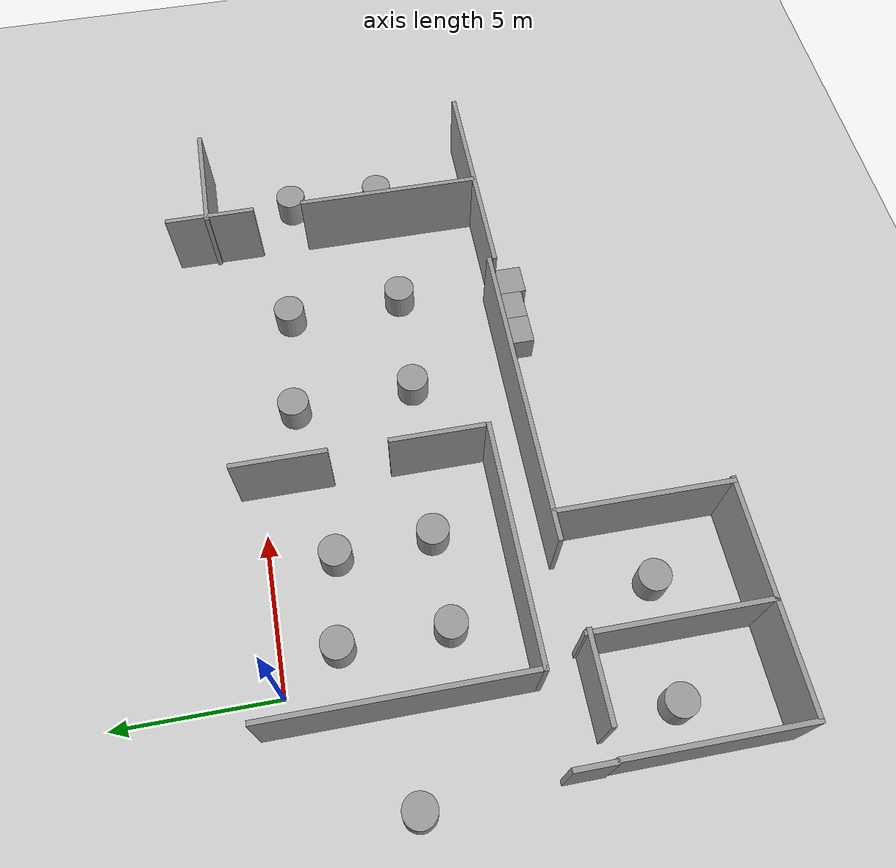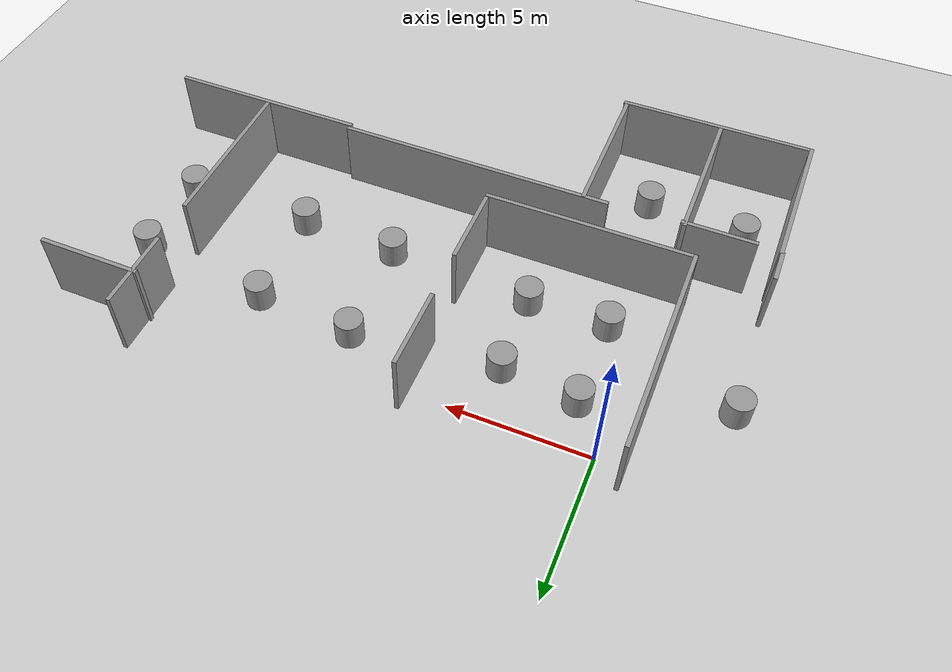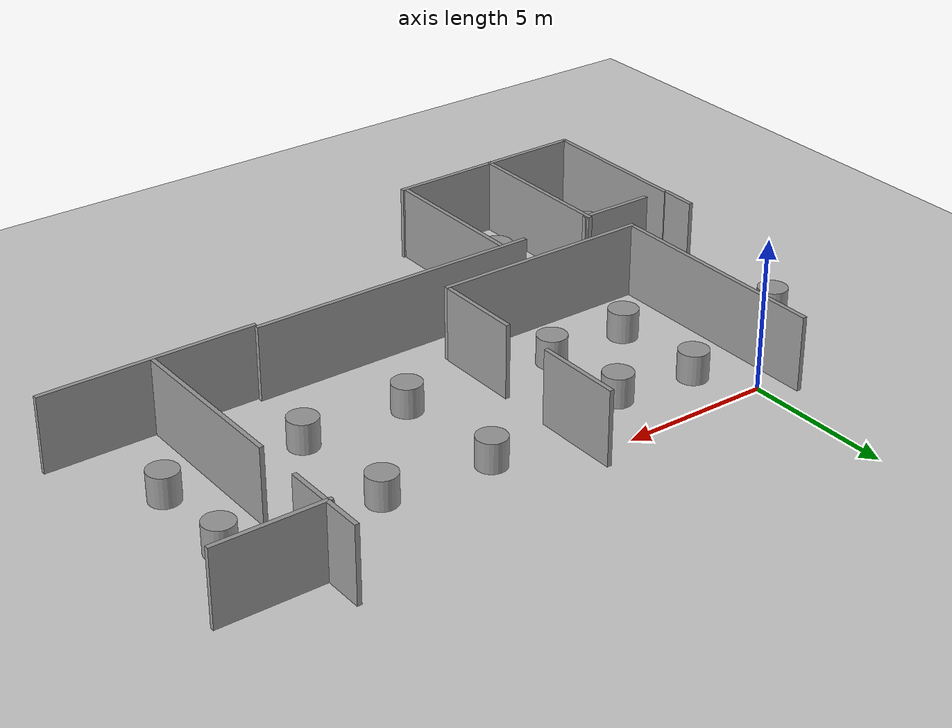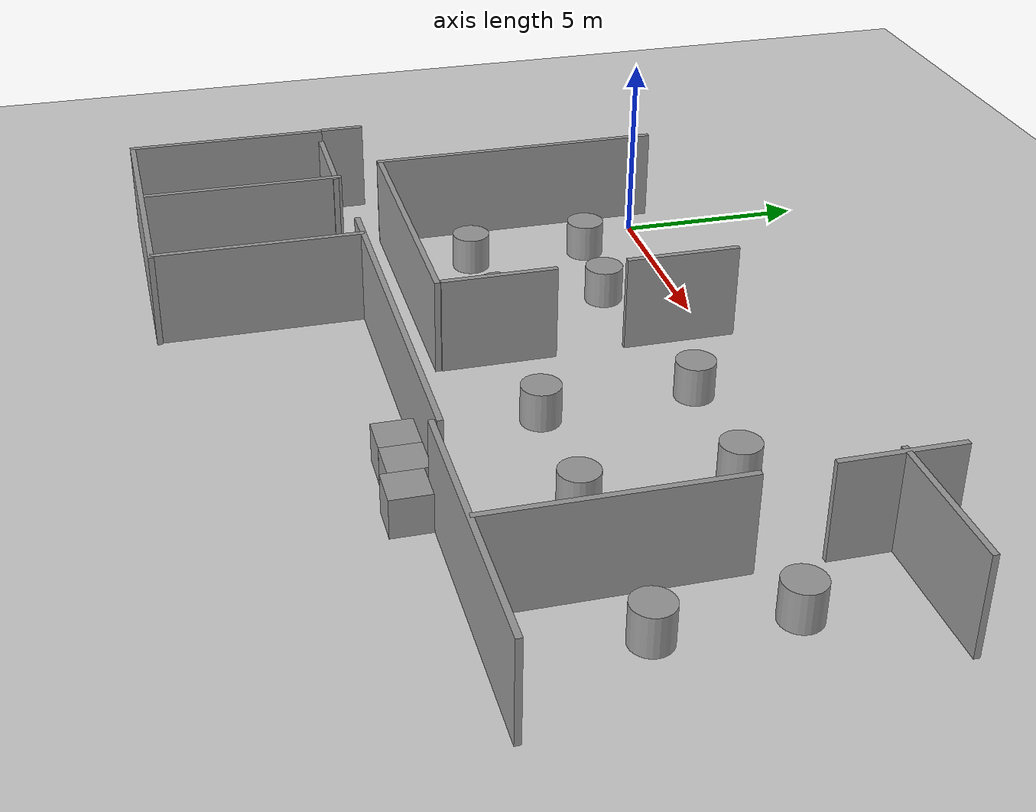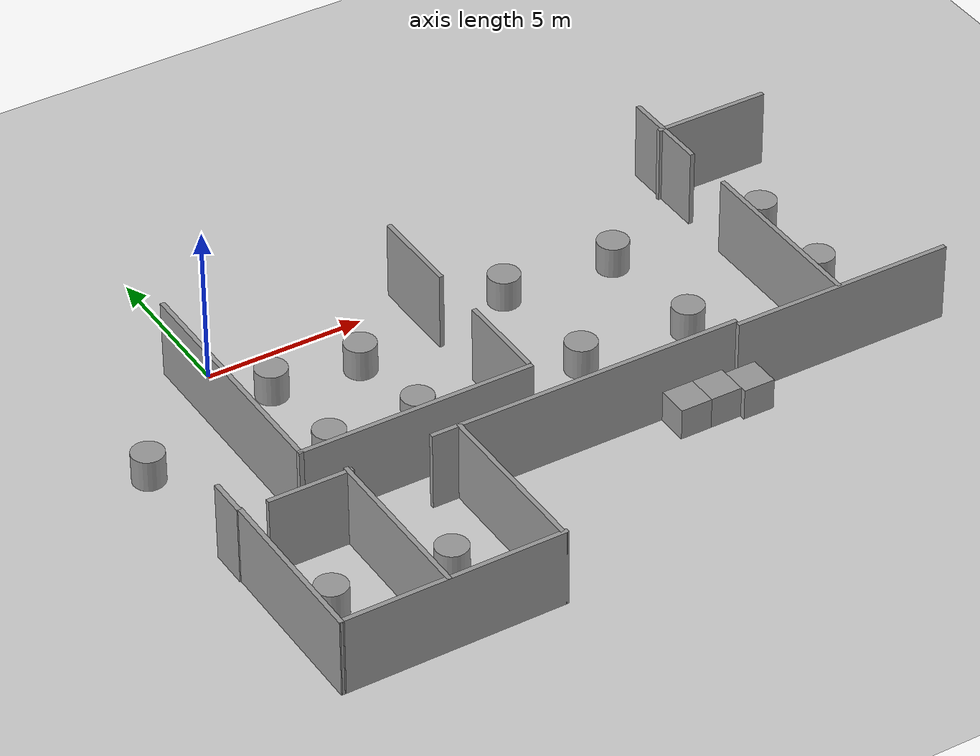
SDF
<sdf version="1.7">
 <world name="default">
  <model name="ground_plane">
   <static>1</static>
   <link name="link">
    <collision name="collision">
     <geometry><plane><normal>0 0 1</normal><size>100 100</size></plane></geometry>
     <surface>
      <contact><collide_bitmask>65535</collide_bitmask></contact>
      <friction><ode><mu>100</mu><mu2>50</mu2></ode></friction>
     </surface>
    </collision>
    <visual name="visual">
     <cast_shadows>0</cast_shadows>
     <geometry><plane><normal>0 0 1</normal><size>100 100</size></plane></geometry>
     <material>
      <script><uri>file://media/materials/scripts/gazebo.material</uri><name>Gazebo/Grey</name></script>
     </material>
    </visual>
   </link>
  </model>
  <model name="5th_v2">
   <link name="Wall_102">
    <pose>15.9331 -8.58282 0 0 -0 3.14159</pose>
    <inertial>
     <inertia><ixx>0</ixx><ixy>0</ixy><ixz>0</ixz><iyy>0</iyy><iyz>0</iyz><izz>0</izz></inertia>
     <mass>0</mass>
    </inertial>
    <visual name="Wall_102_Visual">
     <pose>0 0 1.25 0 -0 0</pose>
     <geometry><box><size>7.15162 0.15 2.5</size></box></geometry>
     <material>
      <script><uri>file://media/materials/scripts/gazebo.material</uri><name>Gazebo/Grey</name></script>
      <ambient>1 1 1 1</ambient>
     </material>
     <meta><layer>0</layer></meta>
    </visual>
    <collision name="Wall_102_Collision">
     <pose>0 0 1.25 0 -0 0</pose>
     <geometry><box><size>7.15162 0.15 2.5</size></box></geometry>
     <surface>
      <friction>
       <ode><mu>1</mu><mu2>1</mu2><fdir1>0 0 0</fdir1><slip1>0</slip1><slip2>0</slip2></ode>
       <torsional>
        <coefficient>1</coefficient>
        <patch_radius>0</patch_radius>
        <surface_radius>0</surface_radius>
        <use_patch_radius>1</use_patch_radius>
        <ode><slip>0</slip></ode>
       </torsional>
      </friction>
      <bounce><restitution_coefficient>0</restitution_coefficient><threshold>1e+06</threshold></bounce>
      <contact>
       <collide_without_contact>0</collide_without_contact>
       <collide_without_contact_bitmask>1</collide_without_contact_bitmask>
       <collide_bitmask>1</collide_bitmask>
       <ode>
        <soft_cfm>0</soft_cfm>
        <soft_erp>0.2</soft_erp>
        <kp>1e+13</kp>
        <kd>1</kd>
        <max_vel>0.01</max_vel>
        <min_depth>0</min_depth>
       </ode>
       <bullet>
        <split_impulse>1</split_impulse>
        <split_impulse_penetration_threshold>-0.01</split_impulse_penetration_threshold>
        <soft_cfm>0</soft_cfm>
        <soft_erp>0.2</soft_erp>
        <kp>1e+13</kp>
        <kd>1</kd>
       </bullet>
      </contact>
     </surface>
    </collision>
   </link>
   <link name="Wall_105">
    <pose>-3.56301 -7.81645 0 0 0 -1.5708</pose>
    <visual name="Wall_105_Visual">
     <pose>0 0 1.25 0 -0 0</pose>
     <geometry><box><size>1.25 0.15 2.5</size></box></geometry>
     <material>
      <script><uri>file://media/materials/scripts/gazebo.material</uri><name>Gazebo/Grey</name></script>
      <ambient>1 1 1 1</ambient>
     </material>
     <meta><layer>0</layer></meta>
    </visual>
    <collision name="Wall_105_Collision">
     <pose>0 0 1.25 0 -0 0</pose>
     <geometry><box><size>1.25 0.15 2.5</size></box></geometry>
     <surface>
      <friction>
       <ode><mu>1</mu><mu2>1</mu2><fdir1>0 0 0</fdir1><slip1>0</slip1><slip2>0</slip2></ode>
       <torsional>
        <coefficient>1</coefficient>
        <patch_radius>0</patch_radius>
        <surface_radius>0</surface_radius>
        <use_patch_radius>1</use_patch_radius>
        <ode><slip>0</slip></ode>
       </torsional>
      </friction>
      <bounce><restitution_coefficient>0</restitution_coefficient><threshold>1e+06</threshold></bounce>
      <contact>
       <collide_without_contact>0</collide_without_contact>
       <collide_without_contact_bitmask>1</collide_without_contact_bitmask>
       <collide_bitmask>1</collide_bitmask>
       <ode>
        <soft_cfm>0</soft_cfm>
        <soft_erp>0.2</soft_erp>
        <kp>1e+13</kp>
        <kd>1</kd>
        <max_vel>0.01</max_vel>
        <min_depth>0</min_depth>
       </ode>
       <bullet>
        <split_impulse>1</split_impulse>
        <split_impulse_penetration_threshold>-0.01</split_impulse_penetration_threshold>
        <soft_cfm>0</soft_cfm>
        <soft_erp>0.2</soft_erp>
        <kp>1e+13</kp>
        <kd>1</kd>
       </bullet>
      </contact>
     </surface>
    </collision>
   </link>
   <link name="Wall_108_clone">
    <pose>15.8279 0.515353 0 0 -0 1.5708</pose>
    <inertial>
     <inertia><ixx>0</ixx><ixy>0</ixy><ixz>0</ixz><iyy>0</iyy><iyz>0</iyz><izz>0</izz></inertia>
     <mass>0</mass>
    </inertial>
    <visual name="Wall_108_Visual">
     <pose>0 0 1.25 0 -0 0</pose>
     <geometry><box><size>2.96394 0.15 2.5</size></box></geometry>
     <material>
      <script><uri>file://media/materials/scripts/gazebo.material</uri><name>Gazebo/Grey</name></script>
      <ambient>1 1 1 1</ambient>
      <shader type="pixel"/>
     </material>
     <meta><layer>0</layer></meta>
    </visual>
    <collision name="Wall_108_Collision">
     <pose>0 0 1.25 0 -0 0</pose>
     <geometry><box><size>2.96394 0.15 2.5</size></box></geometry>
     <surface>
      <friction>
       <ode><mu>1</mu><mu2>1</mu2><fdir1>0 0 0</fdir1><slip1>0</slip1><slip2>0</slip2></ode>
       <torsional>
        <coefficient>1</coefficient>
        <patch_radius>0</patch_radius>
        <surface_radius>0</surface_radius>
        <use_patch_radius>1</use_patch_radius>
        <ode><slip>0</slip></ode>
       </torsional>
      </friction>
      <bounce><restitution_coefficient>0</restitution_coefficient><threshold>1e+06</threshold></bounce>
      <contact>
       <collide_without_contact>0</collide_without_contact>
       <collide_without_contact_bitmask>1</collide_without_contact_bitmask>
       <collide_bitmask>1</collide_bitmask>
       <ode>
        <soft_cfm>0</soft_cfm>
        <soft_erp>0.2</soft_erp>
        <kp>1e+13</kp>
        <kd>1</kd>
        <max_vel>0.01</max_vel>
        <min_depth>0</min_depth>
       </ode>
       <bullet>
        <split_impulse>1</split_impulse>
        <split_impulse_penetration_threshold>-0.01</split_impulse_penetration_threshold>
        <soft_cfm>0</soft_cfm>
        <soft_erp>0.2</soft_erp>
        <kp>1e+13</kp>
        <kd>1</kd>
       </bullet>
      </contact>
     </surface>
    </collision>
   </link>
   <link name="Wall_108_clone_0">
    <pose>15.8288 -5.57913 0 0 -0 1.5708</pose>
    <inertial>
     <inertia><ixx>0</ixx><ixy>0</ixy><ixz>0</ixz><iyy>0</iyy><iyz>0</iyz><izz>0</izz></inertia>
     <mass>0</mass>
    </inertial>
    <visual name="Wall_108_Visual">
     <pose>0 0 1.25 0 -0 0</pose>
     <geometry><box><size>6.01082 0.15 2.5</size></box></geometry>
     <material>
      <script><uri>file://media/materials/scripts/gazebo.material</uri><name>Gazebo/Grey</name></script>
      <ambient>1 1 1 1</ambient>
      <shader type="pixel"/>
     </material>
     <meta><layer>0</layer></meta>
    </visual>
    <collision name="Wall_108_Collision">
     <pose>0 0 1.25 0 -0 0</pose>
     <geometry><box><size>6.01082 0.15 2.5</size></box></geometry>
     <surface>
      <friction>
       <ode><mu>1</mu><mu2>1</mu2><fdir1>0 0 0</fdir1><slip1>0</slip1><slip2>0</slip2></ode>
       <torsional>
        <coefficient>1</coefficient>
        <patch_radius>0</patch_radius>
        <surface_radius>0</surface_radius>
        <use_patch_radius>1</use_patch_radius>
        <ode><slip>0</slip></ode>
       </torsional>
      </friction>
      <bounce><restitution_coefficient>0</restitution_coefficient><threshold>1e+06</threshold></bounce>
      <contact>
       <collide_without_contact>0</collide_without_contact>
       <collide_without_contact_bitmask>1</collide_without_contact_bitmask>
       <collide_bitmask>1</collide_bitmask>
       <ode>
        <soft_cfm>0</soft_cfm>
        <soft_erp>0.2</soft_erp>
        <kp>1e+13</kp>
        <kd>1</kd>
        <max_vel>0.01</max_vel>
        <min_depth>0</min_depth>
       </ode>
       <bullet>
        <split_impulse>1</split_impulse>
        <split_impulse_penetration_threshold>-0.01</split_impulse_penetration_threshold>
        <soft_cfm>0</soft_cfm>
        <soft_erp>0.2</soft_erp>
        <kp>1e+13</kp>
        <kd>1</kd>
       </bullet>
      </contact>
     </surface>
    </collision>
   </link>
   <link name="Wall_108_clone_clone">
    <pose>6.41093 -0.803869 0 0 -0 1.5708</pose>
    <inertial>
     <inertia><ixx>0</ixx><ixy>0</ixy><ixz>0</ixz><iyy>0</iyy><iyz>0</iyz><izz>0</izz></inertia>
     <mass>0</mass>
    </inertial>
    <visual name="Wall_108_Visual">
     <pose>0 0 1.25 0 -0 0</pose>
     <geometry><box><size>2.96394 0.15 2.5</size></box></geometry>
     <material>
      <script><uri>file://media/materials/scripts/gazebo.material</uri><name>Gazebo/Grey</name></script>
      <ambient>1 1 1 1</ambient>
      <shader type="pixel"/>
     </material>
     <meta><layer>0</layer></meta>
    </visual>
    <collision name="Wall_108_Collision">
     <pose>0 0 1.25 0 -0 0</pose>
     <geometry><box><size>2.96394 0.15 2.5</size></box></geometry>
     <surface>
      <friction>
       <ode><mu>1</mu><mu2>1</mu2><fdir1>0 0 0</fdir1><slip1>0</slip1><slip2>0</slip2></ode>
       <torsional>
        <coefficient>1</coefficient>
        <patch_radius>0</patch_radius>
        <surface_radius>0</surface_radius>
        <use_patch_radius>1</use_patch_radius>
        <ode><slip>0</slip></ode>
       </torsional>
      </friction>
      <bounce><restitution_coefficient>0</restitution_coefficient><threshold>1e+06</threshold></bounce>
      <contact>
       <collide_without_contact>0</collide_without_contact>
       <collide_without_contact_bitmask>1</collide_without_contact_bitmask>
       <collide_bitmask>1</collide_bitmask>
       <ode>
        <soft_cfm>0</soft_cfm>
        <soft_erp>0.2</soft_erp>
        <kp>1e+13</kp>
        <kd>1</kd>
        <max_vel>0.01</max_vel>
        <min_depth>0</min_depth>
       </ode>
       <bullet>
        <split_impulse>1</split_impulse>
        <split_impulse_penetration_threshold>-0.01</split_impulse_penetration_threshold>
        <soft_cfm>0</soft_cfm>
        <soft_erp>0.2</soft_erp>
        <kp>1e+13</kp>
        <kd>1</kd>
       </bullet>
      </contact>
     </surface>
    </collision>
   </link>
   <link name="Wall_108_clone_clone_0">
    <pose>6.41093 -5.56687 0 0 -0 1.5708</pose>
    <inertial>
     <inertia><ixx>0</ixx><ixy>0</ixy><ixz>0</ixz><iyy>0</iyy><iyz>0</iyz><izz>0</izz></inertia>
     <mass>0</mass>
    </inertial>
    <visual name="Wall_108_Visual">
     <pose>0 0 1.25 0 -0 0</pose>
     <geometry><box><size>2.96394 0.15 2.5</size></box></geometry>
     <material>
      <script><uri>file://media/materials/scripts/gazebo.material</uri><name>Gazebo/Grey</name></script>
      <ambient>1 1 1 1</ambient>
      <shader type="pixel"/>
     </material>
     <meta><layer>0</layer></meta>
    </visual>
    <collision name="Wall_108_Collision">
     <pose>0 0 1.25 0 -0 0</pose>
     <geometry><box><size>2.96394 0.15 2.5</size></box></geometry>
     <surface>
      <friction>
       <ode><mu>1</mu><mu2>1</mu2><fdir1>0 0 0</fdir1><slip1>0</slip1><slip2>0</slip2></ode>
       <torsional>
        <coefficient>1</coefficient>
        <patch_radius>0</patch_radius>
        <surface_radius>0</surface_radius>
        <use_patch_radius>1</use_patch_radius>
        <ode><slip>0</slip></ode>
       </torsional>
      </friction>
      <bounce><restitution_coefficient>0</restitution_coefficient><threshold>1e+06</threshold></bounce>
      <contact>
       <collide_without_contact>0</collide_without_contact>
       <collide_without_contact_bitmask>1</collide_without_contact_bitmask>
       <collide_bitmask>1</collide_bitmask>
       <ode>
        <soft_cfm>0</soft_cfm>
        <soft_erp>0.2</soft_erp>
        <kp>1e+13</kp>
        <kd>1</kd>
        <max_vel>0.01</max_vel>
        <min_depth>0</min_depth>
       </ode>
       <bullet>
        <split_impulse>1</split_impulse>
        <split_impulse_penetration_threshold>-0.01</split_impulse_penetration_threshold>
        <soft_cfm>0</soft_cfm>
        <soft_erp>0.2</soft_erp>
        <kp>1e+13</kp>
        <kd>1</kd>
       </bullet>
      </contact>
     </surface>
    </collision>
   </link>
   <link name="Wall_114_clone">
    <pose>17.5188 0.617185 0 0 -0 0</pose>
    <inertial>
     <inertia><ixx>0</ixx><ixy>0</ixy><ixz>0</ixz><iyy>0</iyy><iyz>0</iyz><izz>0</izz></inertia>
     <mass>0</mass>
    </inertial>
    <visual name="Wall_114_Visual">
     <pose>0 0 1.25 0 -0 0</pose>
     <geometry><box><size>3.72578 0.15 2.5</size></box></geometry>
     <material>
      <script><uri>file://media/materials/scripts/gazebo.material</uri><name>Gazebo/Grey</name></script>
      <ambient>1 1 1 1</ambient>
      <shader type="pixel"/>
     </material>
     <meta><layer>0</layer></meta>
    </visual>
    <collision name="Wall_114_Collision">
     <pose>0 0 1.25 0 -0 0</pose>
     <geometry><box><size>3.72578 0.15 2.5</size></box></geometry>
     <surface>
      <friction>
       <ode><mu>1</mu><mu2>1</mu2><fdir1>0 0 0</fdir1><slip1>0</slip1><slip2>0</slip2></ode>
       <torsional>
        <coefficient>1</coefficient>
        <patch_radius>0</patch_radius>
        <surface_radius>0</surface_radius>
        <use_patch_radius>1</use_patch_radius>
        <ode><slip>0</slip></ode>
       </torsional>
      </friction>
      <bounce><restitution_coefficient>0</restitution_coefficient><threshold>1e+06</threshold></bounce>
      <contact>
       <collide_without_contact>0</collide_without_contact>
       <collide_without_contact_bitmask>1</collide_without_contact_bitmask>
       <collide_bitmask>1</collide_bitmask>
       <ode>
        <soft_cfm>0</soft_cfm>
        <soft_erp>0.2</soft_erp>
        <kp>1e+13</kp>
        <kd>1</kd>
        <max_vel>0.01</max_vel>
        <min_depth>0</min_depth>
       </ode>
       <bullet>
        <split_impulse>1</split_impulse>
        <split_impulse_penetration_threshold>-0.01</split_impulse_penetration_threshold>
        <soft_cfm>0</soft_cfm>
        <soft_erp>0.2</soft_erp>
        <kp>1e+13</kp>
        <kd>1</kd>
       </bullet>
      </contact>
     </surface>
    </collision>
   </link>
   <link name="Wall_73">
    <pose>-0.953836 -3.2125 0 0 -0 1.5708</pose>
    <visual name="Wall_73_Visual">
     <pose>0 0 1.25 0 -0 0</pose>
     <geometry><box><size>8 0.15 2.5</size></box></geometry>
     <material>
      <script><uri>file://media/materials/scripts/gazebo.material</uri><name>Gazebo/Grey</name></script>
      <ambient>1 1 1 1</ambient>
     </material>
     <meta><layer>0</layer></meta>
    </visual>
    <collision name="Wall_73_Collision">
     <pose>0 0 1.25 0 -0 0</pose>
     <geometry><box><size>8 0.15 2.5</size></box></geometry>
     <surface>
      <friction>
       <ode><mu>1</mu><mu2>1</mu2><fdir1>0 0 0</fdir1><slip1>0</slip1><slip2>0</slip2></ode>
       <torsional>
        <coefficient>1</coefficient>
        <patch_radius>0</patch_radius>
        <surface_radius>0</surface_radius>
        <use_patch_radius>1</use_patch_radius>
        <ode><slip>0</slip></ode>
       </torsional>
      </friction>
      <bounce><restitution_coefficient>0</restitution_coefficient><threshold>1e+06</threshold></bounce>
      <contact>
       <collide_without_contact>0</collide_without_contact>
       <collide_without_contact_bitmask>1</collide_without_contact_bitmask>
       <collide_bitmask>1</collide_bitmask>
       <ode>
        <soft_cfm>0</soft_cfm>
        <soft_erp>0.2</soft_erp>
        <kp>1e+13</kp>
        <kd>1</kd>
        <max_vel>0.01</max_vel>
        <min_depth>0</min_depth>
       </ode>
       <bullet>
        <split_impulse>1</split_impulse>
        <split_impulse_penetration_threshold>-0.01</split_impulse_penetration_threshold>
        <soft_cfm>0</soft_cfm>
        <soft_erp>0.2</soft_erp>
        <kp>1e+13</kp>
        <kd>1</kd>
       </bullet>
      </contact>
     </surface>
    </collision>
   </link>
   <link name="Wall_88">
    <pose>2.72116 -7.1375 0 0 -0 0</pose>
    <visual name="Wall_88_Visual">
     <pose>0 0 1.25 0 -0 0</pose>
     <geometry><box><size>7.5 0.15 2.5</size></box></geometry>
     <material>
      <script><uri>file://media/materials/scripts/gazebo.material</uri><name>Gazebo/Grey</name></script>
      <ambient>1 1 1 1</ambient>
     </material>
     <meta><layer>0</layer></meta>
    </visual>
    <collision name="Wall_88_Collision">
     <pose>0 0 1.25 0 -0 0</pose>
     <geometry><box><size>7.5 0.15 2.5</size></box></geometry>
     <surface>
      <friction>
       <ode><mu>1</mu><mu2>1</mu2><fdir1>0 0 0</fdir1><slip1>0</slip1><slip2>0</slip2></ode>
       <torsional>
        <coefficient>1</coefficient>
        <patch_radius>0</patch_radius>
        <surface_radius>0</surface_radius>
        <use_patch_radius>1</use_patch_radius>
        <ode><slip>0</slip></ode>
       </torsional>
      </friction>
      <bounce><restitution_coefficient>0</restitution_coefficient><threshold>1e+06</threshold></bounce>
      <contact>
       <collide_without_contact>0</collide_without_contact>
       <collide_without_contact_bitmask>1</collide_without_contact_bitmask>
       <collide_bitmask>1</collide_bitmask>
       <ode>
        <soft_cfm>0</soft_cfm>
        <soft_erp>0.2</soft_erp>
        <kp>1e+13</kp>
        <kd>1</kd>
        <max_vel>0.01</max_vel>
        <min_depth>0</min_depth>
       </ode>
       <bullet>
        <split_impulse>1</split_impulse>
        <split_impulse_penetration_threshold>-0.01</split_impulse_penetration_threshold>
        <soft_cfm>0</soft_cfm>
        <soft_erp>0.2</soft_erp>
        <kp>1e+13</kp>
        <kd>1</kd>
       </bullet>
      </contact>
     </surface>
    </collision>
   </link>
   <link name="Wall_91">
    <pose>7.43768 -8.39424 0 0 0 -0.001972</pose>
    <inertial>
     <inertia><ixx>0</ixx><ixy>0</ixy><ixz>0</ixz><iyy>0</iyy><iyz>0</iyz><izz>0</izz></inertia>
     <mass>0</mass>
    </inertial>
    <visual name="Wall_91_Visual">
     <pose>0 0 1.25 0 -0 0</pose>
     <geometry><box><size>10 0.15 2.5</size></box></geometry>
     <material>
      <script><uri>file://media/materials/scripts/gazebo.material</uri><name>Gazebo/Grey</name></script>
      <ambient>1 1 1 1</ambient>
     </material>
     <meta><layer>0</layer></meta>
    </visual>
    <collision name="Wall_91_Collision">
     <pose>0 0 1.25 0 -0 0</pose>
     <geometry><box><size>10 0.15 2.5</size></box></geometry>
     <surface>
      <friction>
       <ode><mu>1</mu><mu2>1</mu2><fdir1>0 0 0</fdir1><slip1>0</slip1><slip2>0</slip2></ode>
       <torsional>
        <coefficient>1</coefficient>
        <patch_radius>0</patch_radius>
        <surface_radius>0</surface_radius>
        <use_patch_radius>1</use_patch_radius>
        <ode><slip>0</slip></ode>
       </torsional>
      </friction>
      <bounce><restitution_coefficient>0</restitution_coefficient><threshold>1e+06</threshold></bounce>
      <contact>
       <collide_without_contact>0</collide_without_contact>
       <collide_without_contact_bitmask>1</collide_without_contact_bitmask>
       <collide_bitmask>1</collide_bitmask>
       <ode>
        <soft_cfm>0</soft_cfm>
        <soft_erp>0.2</soft_erp>
        <kp>1e+13</kp>
        <kd>1</kd>
        <max_vel>0.01</max_vel>
        <min_depth>0</min_depth>
       </ode>
       <bullet>
        <split_impulse>1</split_impulse>
        <split_impulse_penetration_threshold>-0.01</split_impulse_penetration_threshold>
        <soft_cfm>0</soft_cfm>
        <soft_erp>0.2</soft_erp>
        <kp>1e+13</kp>
        <kd>1</kd>
       </bullet>
      </contact>
     </surface>
    </collision>
   </link>
   <link name="Wall_91_clone">
    <pose>-1.41663 -8.51854 0 0 0 -0.001972</pose>
    <inertial>
     <inertia><ixx>0</ixx><ixy>0</ixy><ixz>0</ixz><iyy>0</iyy><iyz>0</iyz><izz>0</izz></inertia>
     <mass>0</mass>
    </inertial>
    <visual name="Wall_91_Visual">
     <pose>0 0 1.25 0 -0 0</pose>
     <geometry><box><size>2.65199 0.15 2.5</size></box></geometry>
     <material>
      <script><uri>file://media/materials/scripts/gazebo.material</uri><name>Gazebo/Grey</name></script>
      <ambient>1 1 1 1</ambient>
      <shader type="pixel"/>
     </material>
     <meta><layer>0</layer></meta>
    </visual>
    <collision name="Wall_91_Collision">
     <pose>0 0 1.25 0 -0 0</pose>
     <geometry><box><size>2.65199 0.15 2.5</size></box></geometry>
     <surface>
      <friction>
       <ode><mu>1</mu><mu2>1</mu2><fdir1>0 0 0</fdir1><slip1>0</slip1><slip2>0</slip2></ode>
       <torsional>
        <coefficient>1</coefficient>
        <patch_radius>0</patch_radius>
        <surface_radius>0</surface_radius>
        <use_patch_radius>1</use_patch_radius>
        <ode><slip>0</slip></ode>
       </torsional>
      </friction>
      <bounce><restitution_coefficient>0</restitution_coefficient><threshold>1e+06</threshold></bounce>
      <contact>
       <collide_without_contact>0</collide_without_contact>
       <collide_without_contact_bitmask>1</collide_without_contact_bitmask>
       <collide_bitmask>1</collide_bitmask>
       <ode>
        <soft_cfm>0</soft_cfm>
        <soft_erp>0.2</soft_erp>
        <kp>1e+13</kp>
        <kd>1</kd>
        <max_vel>0.01</max_vel>
        <min_depth>0</min_depth>
       </ode>
       <bullet>
        <split_impulse>1</split_impulse>
        <split_impulse_penetration_threshold>-0.01</split_impulse_penetration_threshold>
        <soft_cfm>0</soft_cfm>
        <soft_erp>0.2</soft_erp>
        <kp>1e+13</kp>
        <kd>1</kd>
       </bullet>
      </contact>
     </surface>
    </collision>
   </link>
   <link name="Wall_93">
    <pose>-3.52518 -11.1363 0 0 0 -1.5708</pose>
    <visual name="Wall_93_Visual">
     <pose>0 0 1.25 0 -0 0</pose>
     <geometry><box><size>5.5 0.15 2.5</size></box></geometry>
     <material>
      <script><uri>file://media/materials/scripts/gazebo.material</uri><name>Gazebo/Grey</name></script>
      <ambient>1 1 1 1</ambient>
     </material>
     <meta><layer>0</layer></meta>
    </visual>
    <collision name="Wall_93_Collision">
     <pose>0 0 1.25 0 -0 0</pose>
     <geometry><box><size>5.5 0.15 2.5</size></box></geometry>
     <surface>
      <friction>
       <ode><mu>1</mu><mu2>1</mu2><fdir1>0 0 0</fdir1><slip1>0</slip1><slip2>0</slip2></ode>
       <torsional>
        <coefficient>1</coefficient>
        <patch_radius>0</patch_radius>
        <surface_radius>0</surface_radius>
        <use_patch_radius>1</use_patch_radius>
        <ode><slip>0</slip></ode>
       </torsional>
      </friction>
      <bounce><restitution_coefficient>0</restitution_coefficient><threshold>1e+06</threshold></bounce>
      <contact>
       <collide_without_contact>0</collide_without_contact>
       <collide_without_contact_bitmask>1</collide_without_contact_bitmask>
       <collide_bitmask>1</collide_bitmask>
       <ode>
        <soft_cfm>0</soft_cfm>
        <soft_erp>0.2</soft_erp>
        <kp>1e+13</kp>
        <kd>1</kd>
        <max_vel>0.01</max_vel>
        <min_depth>0</min_depth>
       </ode>
       <bullet>
        <split_impulse>1</split_impulse>
        <split_impulse_penetration_threshold>-0.01</split_impulse_penetration_threshold>
        <soft_cfm>0</soft_cfm>
        <soft_erp>0.2</soft_erp>
        <kp>1e+13</kp>
        <kd>1</kd>
       </bullet>
      </contact>
     </surface>
    </collision>
   </link>
   <link name="Wall_94">
    <pose>-0.043389 -13.7938 0 0 -0 0.005074</pose>
    <visual name="Wall_94_Visual">
     <pose>0 0 1.25 0 -0 0</pose>
     <geometry><box><size>7.04371 0.15 2.5</size></box></geometry>
     <material>
      <script><uri>file://media/materials/scripts/gazebo.material</uri><name>Gazebo/Grey</name></script>
      <ambient>1 1 1 1</ambient>
     </material>
     <meta><layer>0</layer></meta>
    </visual>
    <collision name="Wall_94_Collision">
     <pose>0 0 1.25 0 -0 0</pose>
     <geometry><box><size>7.04371 0.15 2.5</size></box></geometry>
     <surface>
      <friction>
       <ode><mu>1</mu><mu2>1</mu2><fdir1>0 0 0</fdir1><slip1>0</slip1><slip2>0</slip2></ode>
       <torsional>
        <coefficient>1</coefficient>
        <patch_radius>0</patch_radius>
        <surface_radius>0</surface_radius>
        <use_patch_radius>1</use_patch_radius>
        <ode><slip>0</slip></ode>
       </torsional>
      </friction>
      <bounce><restitution_coefficient>0</restitution_coefficient><threshold>1e+06</threshold></bounce>
      <contact>
       <collide_without_contact>0</collide_without_contact>
       <collide_without_contact_bitmask>1</collide_without_contact_bitmask>
       <collide_bitmask>1</collide_bitmask>
       <ode>
        <soft_cfm>0</soft_cfm>
        <soft_erp>0.2</soft_erp>
        <kp>1e+13</kp>
        <kd>1</kd>
        <max_vel>0.01</max_vel>
        <min_depth>0</min_depth>
       </ode>
       <bullet>
        <split_impulse>1</split_impulse>
        <split_impulse_penetration_threshold>-0.01</split_impulse_penetration_threshold>
        <soft_cfm>0</soft_cfm>
        <soft_erp>0.2</soft_erp>
        <kp>1e+13</kp>
        <kd>1</kd>
       </bullet>
      </contact>
     </surface>
    </collision>
   </link>
   <link name="Wall_95">
    <pose>3.34224 -11.1013 0 0 -0 1.5708</pose>
    <visual name="Wall_95_Visual">
     <pose>0 0 1.25 0 -0 0</pose>
     <geometry><box><size>5.5 0.15 2.5</size></box></geometry>
     <material>
      <script><uri>file://media/materials/scripts/gazebo.material</uri><name>Gazebo/Grey</name></script>
      <ambient>1 1 1 1</ambient>
     </material>
     <meta><layer>0</layer></meta>
    </visual>
    <collision name="Wall_95_Collision">
     <pose>0 0 1.25 0 -0 0</pose>
     <geometry><box><size>5.5 0.15 2.5</size></box></geometry>
     <surface>
      <friction>
       <ode><mu>1</mu><mu2>1</mu2><fdir1>0 0 0</fdir1><slip1>0</slip1><slip2>0</slip2></ode>
       <torsional>
        <coefficient>1</coefficient>
        <patch_radius>0</patch_radius>
        <surface_radius>0</surface_radius>
        <use_patch_radius>1</use_patch_radius>
        <ode><slip>0</slip></ode>
       </torsional>
      </friction>
      <bounce><restitution_coefficient>0</restitution_coefficient><threshold>1e+06</threshold></bounce>
      <contact>
       <collide_without_contact>0</collide_without_contact>
       <collide_without_contact_bitmask>1</collide_without_contact_bitmask>
       <collide_bitmask>1</collide_bitmask>
       <ode>
        <soft_cfm>0</soft_cfm>
        <soft_erp>0.2</soft_erp>
        <kp>1e+13</kp>
        <kd>1</kd>
        <max_vel>0.01</max_vel>
        <min_depth>0</min_depth>
       </ode>
       <bullet>
        <split_impulse>1</split_impulse>
        <split_impulse_penetration_threshold>-0.01</split_impulse_penetration_threshold>
        <soft_cfm>0</soft_cfm>
        <soft_erp>0.2</soft_erp>
        <kp>1e+13</kp>
        <kd>1</kd>
       </bullet>
      </contact>
     </surface>
    </collision>
   </link>
   <link name="Wall_97">
    <pose>-0.232324 -11.1134 0 0 0 -1.5708</pose>
    <visual name="Wall_97_Visual">
     <pose>0 0 1.25 0 -0 0</pose>
     <geometry><box><size>5.5 0.15 2.5</size></box></geometry>
     <material>
      <script><uri>file://media/materials/scripts/gazebo.material</uri><name>Gazebo/Grey</name></script>
      <ambient>1 1 1 1</ambient>
     </material>
     <meta><layer>0</layer></meta>
    </visual>
    <collision name="Wall_97_Collision">
     <pose>0 0 1.25 0 -0 0</pose>
     <geometry><box><size>5.5 0.15 2.5</size></box></geometry>
     <surface>
      <friction>
       <ode><mu>1</mu><mu2>1</mu2><fdir1>0 0 0</fdir1><slip1>0</slip1><slip2>0</slip2></ode>
       <torsional>
        <coefficient>1</coefficient>
        <patch_radius>0</patch_radius>
        <surface_radius>0</surface_radius>
        <use_patch_radius>1</use_patch_radius>
        <ode><slip>0</slip></ode>
       </torsional>
      </friction>
      <bounce><restitution_coefficient>0</restitution_coefficient><threshold>1e+06</threshold></bounce>
      <contact>
       <collide_without_contact>0</collide_without_contact>
       <collide_without_contact_bitmask>1</collide_without_contact_bitmask>
       <collide_bitmask>1</collide_bitmask>
       <ode>
        <soft_cfm>0</soft_cfm>
        <soft_erp>0.2</soft_erp>
        <kp>1e+13</kp>
        <kd>1</kd>
        <max_vel>0.01</max_vel>
        <min_depth>0</min_depth>
       </ode>
       <bullet>
        <split_impulse>1</split_impulse>
        <split_impulse_penetration_threshold>-0.01</split_impulse_penetration_threshold>
        <soft_cfm>0</soft_cfm>
        <soft_erp>0.2</soft_erp>
        <kp>1e+13</kp>
        <kd>1</kd>
       </bullet>
      </contact>
     </surface>
    </collision>
   </link>
   <static>1</static>
  </model>
  <model name="unit_cylinder_clone_19">
   <pose>-3.66215 -3.27212 0.499992 -3e-06 2e-06 0</pose>
   <link name="link">
    <inertial>
     <mass>1</mass>
     <inertia><ixx>0.145833</ixx><ixy>0</ixy><ixz>0</ixz><iyy>0.145833</iyy><iyz>0</iyz><izz>0.125</izz></inertia>
    </inertial>
    <collision name="collision">
     <geometry><cylinder><radius>0.5</radius><length>1</length></cylinder></geometry>
    </collision>
    <visual name="visual">
     <geometry><cylinder><radius>0.5</radius><length>1</length></cylinder></geometry>
     <material>
      <script><name>Gazebo/Grey</name><uri>file://media/materials/scripts/gazebo.material</uri></script>
     </material>
    </visual>
   </link>
  </model>
  <model name="unit_cylinder_clone_26">
   <pose>1.12357 -5.01472 0.499992 -3e-06 2e-06 0</pose>
   <link name="link">
    <inertial>
     <mass>1</mass>
     <inertia><ixx>0.145833</ixx><ixy>0</ixy><ixz>0</ixz><iyy>0.145833</iyy><iyz>0</iyz><izz>0.125</izz></inertia>
    </inertial>
    <collision name="collision">
     <geometry><cylinder><radius>0.5</radius><length>1</length></cylinder></geometry>
    </collision>
    <visual name="visual">
     <geometry><cylinder><radius>0.5</radius><length>1</length></cylinder></geometry>
     <material>
      <script><name>Gazebo/Grey</name><uri>file://media/materials/scripts/gazebo.material</uri></script>
     </material>
    </visual>
   </link>
  </model>
  <model name="unit_cylinder_clone_27">
   <pose>1.11829 -1.71239 0.499992 -3e-06 2e-06 0</pose>
   <link name="link">
    <inertial>
     <mass>1</mass>
     <inertia><ixx>0.145833</ixx><ixy>0</ixy><ixz>0</ixz><iyy>0.145833</iyy><iyz>0</iyz><izz>0.125</izz></inertia>
    </inertial>
    <collision name="collision">
     <geometry><cylinder><radius>0.5</radius><length>1</length></cylinder></geometry>
    </collision>
    <visual name="visual">
     <geometry><cylinder><radius>0.5</radius><length>1</length></cylinder></geometry>
     <material>
      <script><name>Gazebo/Grey</name><uri>file://media/materials/scripts/gazebo.material</uri></script>
     </material>
    </visual>
   </link>
  </model>
  <model name="unit_cylinder_clone_28">
   <pose>4 -5 0.499992 -3e-06 2e-06 0</pose>
   <link name="link">
    <inertial>
     <mass>1</mass>
     <inertia><ixx>0.145833</ixx><ixy>0</ixy><ixz>0</ixz><iyy>0.145833</iyy><iyz>0</iyz><izz>0.125</izz></inertia>
    </inertial>
    <collision name="collision">
     <geometry><cylinder><radius>0.5</radius><length>1</length></cylinder></geometry>
    </collision>
    <visual name="visual">
     <geometry><cylinder><radius>0.5</radius><length>1</length></cylinder></geometry>
     <material>
      <script><name>Gazebo/Grey</name><uri>file://media/materials/scripts/gazebo.material</uri></script>
     </material>
    </visual>
   </link>
  </model>
  <model name="unit_cylinder_clone_29">
   <pose>3.85586 -2.01638 0.499997 3e-06 -2e-06 0</pose>
   <link name="link">
    <inertial>
     <mass>1</mass>
     <inertia><ixx>0.145833</ixx><ixy>0</ixy><ixz>0</ixz><iyy>0.145833</iyy><iyz>0</iyz><izz>0.125</izz></inertia>
    </inertial>
    <collision name="collision">
     <geometry><cylinder><radius>0.5</radius><length>1</length></cylinder></geometry>
    </collision>
    <visual name="visual">
     <geometry><cylinder><radius>0.5</radius><length>1</length></cylinder></geometry>
     <material>
      <script><name>Gazebo/Grey</name><uri>file://media/materials/scripts/gazebo.material</uri></script>
     </material>
    </visual>
   </link>
  </model>
  <model name="unit_cylinder_clone_34">
   <pose>17.4683 -2.20699 0.499992 -3e-06 3e-06 0</pose>
   <link name="link">
    <inertial>
     <mass>1</mass>
     <inertia><ixx>0.145833</ixx><ixy>0</ixy><ixz>0</ixz><iyy>0.145833</iyy><iyz>0</iyz><izz>0.125</izz></inertia>
    </inertial>
    <collision name="collision">
     <geometry><cylinder><radius>0.5</radius><length>1</length></cylinder></geometry>
    </collision>
    <visual name="visual">
     <geometry><cylinder><radius>0.5</radius><length>1</length></cylinder></geometry>
     <material>
      <script><name>Gazebo/Grey</name><uri>file://media/materials/scripts/gazebo.material</uri></script>
     </material>
    </visual>
   </link>
  </model>
  <model name="unit_cylinder_clone_35">
   <pose>17.4117 -5.32588 0.499998 3e-06 -3e-06 0</pose>
   <link name="link">
    <inertial>
     <mass>1</mass>
     <inertia><ixx>0.145833</ixx><ixy>0</ixy><ixz>0</ixz><iyy>0.145833</iyy><iyz>0</iyz><izz>0.125</izz></inertia>
    </inertial>
    <collision name="collision">
     <geometry><cylinder><radius>0.5</radius><length>1</length></cylinder></geometry>
    </collision>
    <visual name="visual">
     <geometry><cylinder><radius>0.5</radius><length>1</length></cylinder></geometry>
     <material>
      <script><name>Gazebo/Grey</name><uri>file://media/materials/scripts/gazebo.material</uri></script>
     </material>
    </visual>
   </link>
  </model>
  <model name="unit_cylinder_clone_36">
   <pose>9.25068 -5.2765 0.499992 -3e-06 3e-06 0</pose>
   <link name="link">
    <inertial>
     <mass>1</mass>
     <inertia><ixx>0.145833</ixx><ixy>0</ixy><ixz>0</ixz><iyy>0.145833</iyy><iyz>0</iyz><izz>0.125</izz></inertia>
    </inertial>
    <collision name="collision">
     <geometry><cylinder><radius>0.5</radius><length>1</length></cylinder></geometry>
    </collision>
    <visual name="visual">
     <geometry><cylinder><radius>0.5</radius><length>1</length></cylinder></geometry>
     <material>
      <script><name>Gazebo/Grey</name><uri>file://media/materials/scripts/gazebo.material</uri></script>
     </material>
    </visual>
   </link>
  </model>
  <model name="unit_cylinder_clone_37">
   <pose>12.7997 -5.41636 0.499998 3e-06 -3e-06 0</pose>
   <link name="link">
    <inertial>
     <mass>1</mass>
     <inertia><ixx>0.145833</ixx><ixy>0</ixy><ixz>0</ixz><iyy>0.145833</iyy><iyz>0</iyz><izz>0.125</izz></inertia>
    </inertial>
    <collision name="collision">
     <geometry><cylinder><radius>0.5</radius><length>1</length></cylinder></geometry>
    </collision>
    <visual name="visual">
     <geometry><cylinder><radius>0.5</radius><length>1</length></cylinder></geometry>
     <material>
      <script><name>Gazebo/Grey</name><uri>file://media/materials/scripts/gazebo.material</uri></script>
     </material>
    </visual>
   </link>
  </model>
  <model name="unit_cylinder_clone_38">
   <pose>9.0646 -1.35717 0.499992 -3e-06 3e-06 0</pose>
   <link name="link">
    <inertial>
     <mass>1</mass>
     <inertia><ixx>0.145833</ixx><ixy>0</ixy><ixz>0</ixz><iyy>0.145833</iyy><iyz>0</iyz><izz>0.125</izz></inertia>
    </inertial>
    <collision name="collision">
     <geometry><cylinder><radius>0.5</radius><length>1</length></cylinder></geometry>
    </collision>
    <visual name="visual">
     <geometry><cylinder><radius>0.5</radius><length>1</length></cylinder></geometry>
     <material>
      <script><name>Gazebo/Grey</name><uri>file://media/materials/scripts/gazebo.material</uri></script>
     </material>
    </visual>
   </link>
  </model>
  <model name="unit_cylinder_clone_39">
   <pose>12.6461 -1.62182 0.499992 -3e-06 3e-06 0</pose>
   <link name="link">
    <inertial>
     <mass>1</mass>
     <inertia><ixx>0.145833</ixx><ixy>0</ixy><ixz>0</ixz><iyy>0.145833</iyy><iyz>0</iyz><izz>0.125</izz></inertia>
    </inertial>
    <collision name="collision">
     <geometry><cylinder><radius>0.5</radius><length>1</length></cylinder></geometry>
    </collision>
    <visual name="visual">
     <geometry><cylinder><radius>0.5</radius><length>1</length></cylinder></geometry>
     <material>
      <script><name>Gazebo/Grey</name><uri>file://media/materials/scripts/gazebo.material</uri></script>
     </material>
    </visual>
   </link>
  </model>
  <model name="unit_cylinder_clone_43">
   <pose>1.43609 -11.147 0.499998 3e-06 -4e-06 0</pose>
   <link name="link">
    <inertial>
     <mass>1</mass>
     <inertia><ixx>0.145833</ixx><ixy>0</ixy><ixz>0</ixz><iyy>0.145833</iyy><iyz>0</iyz><izz>0.125</izz></inertia>
    </inertial>
    <collision name="collision">
     <geometry><cylinder><radius>0.5</radius><length>1</length></cylinder></geometry>
    </collision>
    <visual name="visual">
     <geometry><cylinder><radius>0.5</radius><length>1</length></cylinder></geometry>
     <material>
      <script><name>Gazebo/Grey</name><uri>file://media/materials/scripts/gazebo.material</uri></script>
     </material>
    </visual>
   </link>
  </model>
  <model name="unit_cylinder_clone_44">
   <pose>-2.15554 -10.8679 0.499998 3e-06 -4e-06 0</pose>
   <link name="link">
    <inertial>
     <mass>1</mass>
     <inertia><ixx>0.145833</ixx><ixy>0</ixy><ixz>0</ixz><iyy>0.145833</iyy><iyz>0</iyz><izz>0.125</izz></inertia>
    </inertial>
    <collision name="collision">
     <geometry><cylinder><radius>0.5</radius><length>1</length></cylinder></geometry>
    </collision>
    <visual name="visual">
     <geometry><cylinder><radius>0.5</radius><length>1</length></cylinder></geometry>
     <material>
      <script><name>Gazebo/Grey</name><uri>file://media/materials/scripts/gazebo.material</uri></script>
     </material>
    </visual>
   </link>
  </model>
  <model name="unit_box">
   <pose>10.4353 -8.99036 0.5 0 0 -0.001396</pose>
   <link name="link">
    <inertial>
     <mass>1</mass>
     <inertia>
      <ixx>0.166667</ixx>
      <ixy>0</ixy>
      <ixz>0</ixz>
      <iyy>0.166667</iyy>
      <iyz>0</iyz>
      <izz>0.166667</izz>
     </inertia>
    </inertial>
    <collision name="collision"><geometry><box><size>1 1 1</size></box></geometry></collision>
    <visual name="visual">
     <geometry><box><size>1 1 1</size></box></geometry>
     <material>
      <script><name>Gazebo/Grey</name><uri>file://media/materials/scripts/gazebo.material</uri></script>
     </material>
    </visual>
   </link>
  </model>
  <model name="unit_box_clone">
   <pose>11.4353 -8.98897 0.5 0 -0 -0.001394</pose>
   <link name="link">
    <inertial>
     <mass>1</mass>
     <inertia>
      <ixx>0.166667</ixx>
      <ixy>0</ixy>
      <ixz>0</ixz>
      <iyy>0.166667</iyy>
      <iyz>0</iyz>
      <izz>0.166667</izz>
     </inertia>
    </inertial>
    <collision name="collision"><geometry><box><size>1 1 1</size></box></geometry></collision>
    <visual name="visual">
     <geometry><box><size>1 1 1</size></box></geometry>
     <material>
      <script><name>Gazebo/Grey</name><uri>file://media/materials/scripts/gazebo.material</uri></script>
     </material>
    </visual>
   </link>
  </model>
  <model name="unit_box_clone_0">
   <pose>12.4351 -9.15808 0.499995 -0 -1e-05 -0.0014</pose>
   <link name="link">
    <inertial>
     <mass>1</mass>
     <inertia>
      <ixx>0.166667</ixx>
      <ixy>0</ixy>
      <ixz>0</ixz>
      <iyy>0.166667</iyy>
      <iyz>0</iyz>
      <izz>0.166667</izz>
     </inertia>
    </inertial>
    <collision name="collision"><geometry><box><size>1 1 1</size></box></geometry></collision>
    <visual name="visual">
     <geometry><box><size>1 1 1</size></box></geometry>
     <material>
      <script><name>Gazebo/Grey</name><uri>file://media/materials/scripts/gazebo.material</uri></script>
     </material>
    </visual>
   </link>
  </model>
 </world>
</sdf>
